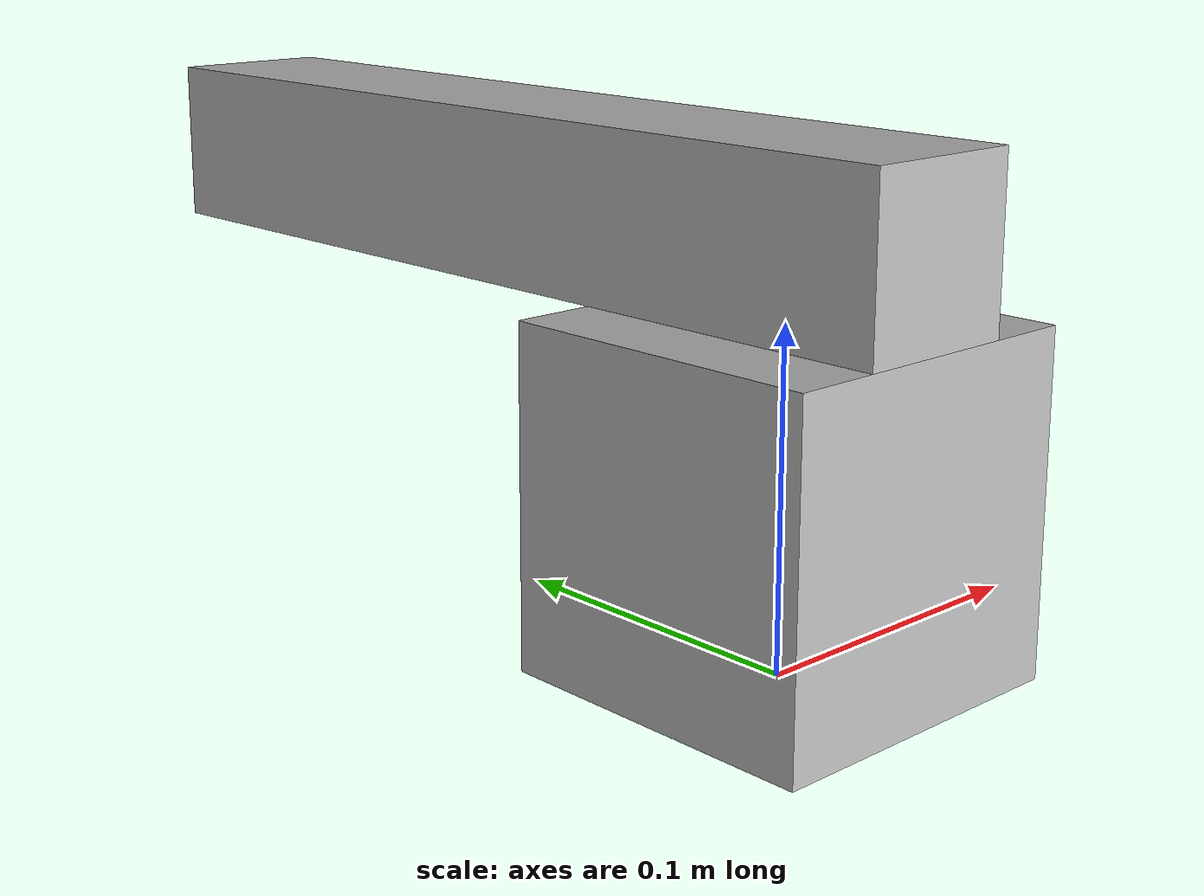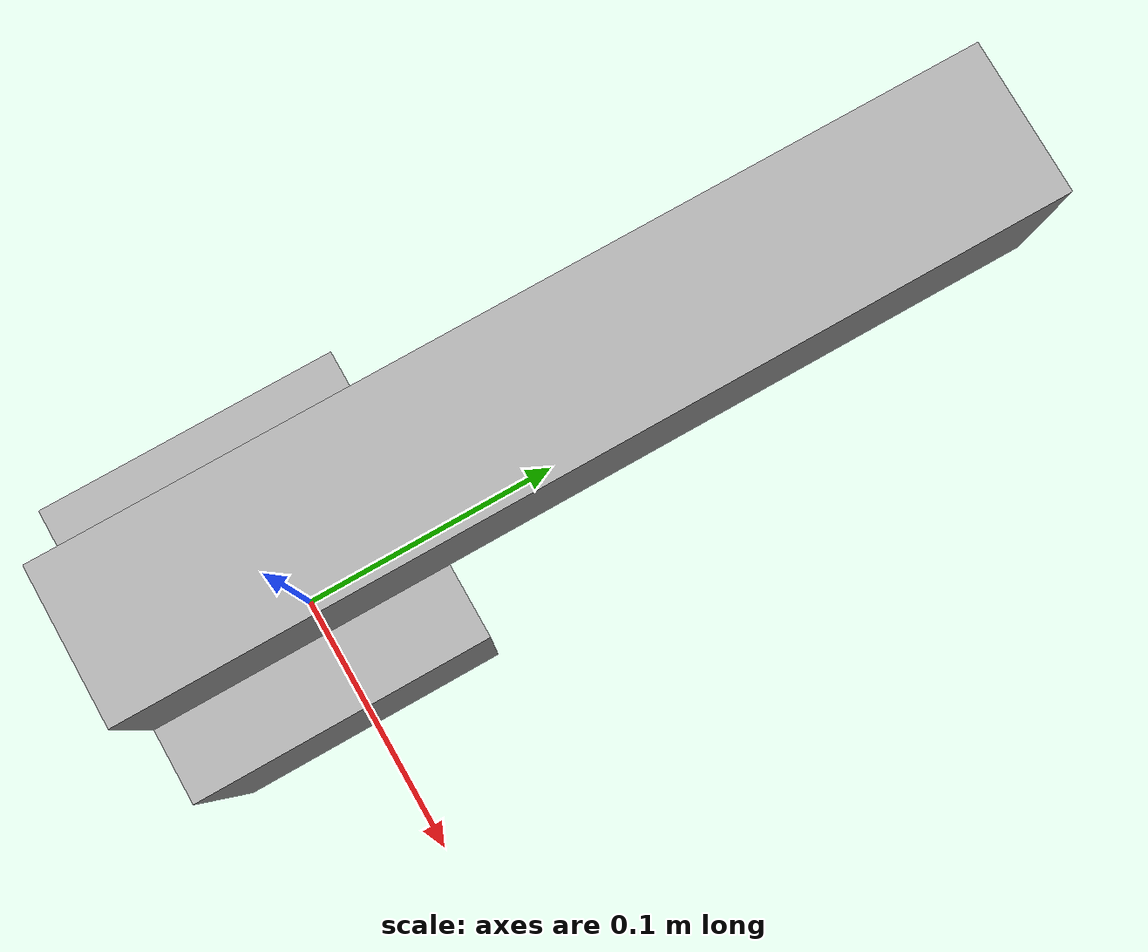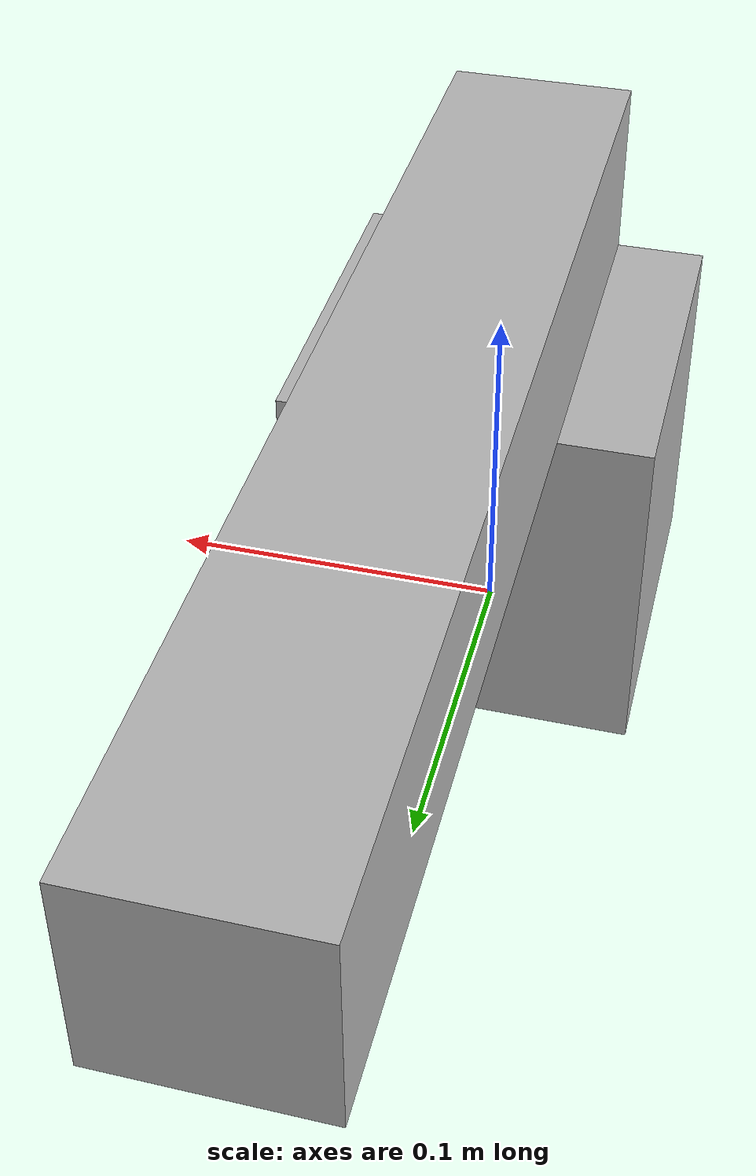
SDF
<?xml version='1.0'?>
<sdf version='1.4'>
 <model name="test">
  <static>false</static>

  <link name='link0'>
   <pose>0 0 0.05 0 0 0</pose>
        <collision name='collision'>
    <geometry>
          <box>
      <size>.1 .1 .1</size>
          </box>
    </geometry>
   </collision>
   <visual name='visual'>
    <geometry>
     <box>
      <size>.1 .1 .1</size>
     </box>
    </geometry>
   </visual>
  </link>

  <link name="link1">
   <pose>0 0.1 0.125 0 0 0</pose>

   <collision name="collision">
    <geometry>
     <box>
      <size>.05 .3 .05</size>
     </box>
    </geometry>
   </collision>
   <visual name="visual">
    <geometry>
     <box>
      <size>.05 .3 .05</size>
     </box>
    </geometry>
   </visual>
  </link>

  <joint type="revolute" name="joint0">
   <pose>0 0 0 0 0 0</pose>
   <child>link0</child>
   <parent>world</parent>
   <axis>
    <xyz>0 0 0</xyz>
   </axis>
  </joint>

  <joint type="revolute" name="joint1">
   <pose>0 -0.1 0 0 0 0</pose>
   <child>link1</child>
   <parent>link0</parent>
   <axis>
    <limit>
     <lower>-1</lower>
     <upper>1</upper>
    </limit>
    <xyz>0 0 10</xyz>
   </axis>
  </joint>

 </model>
</sdf>
